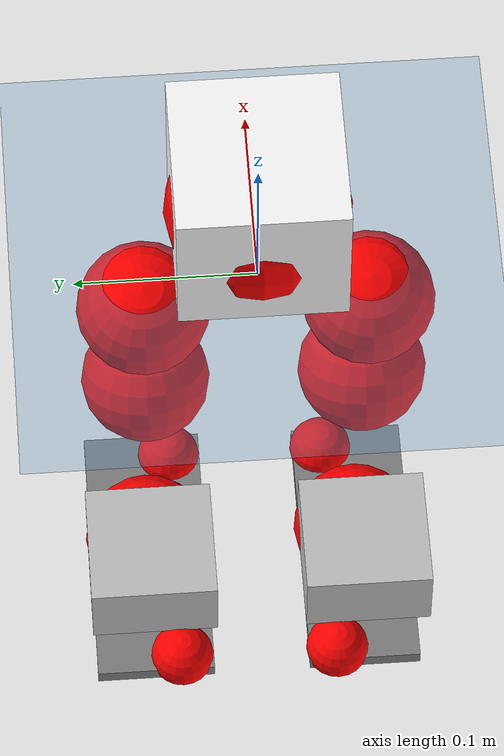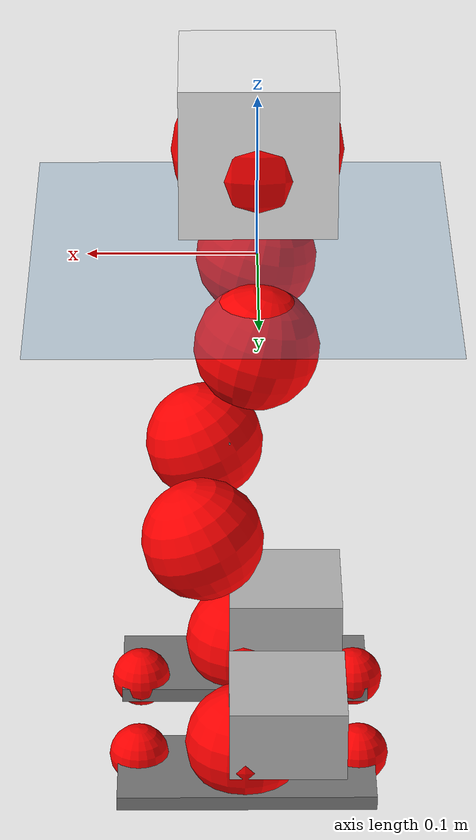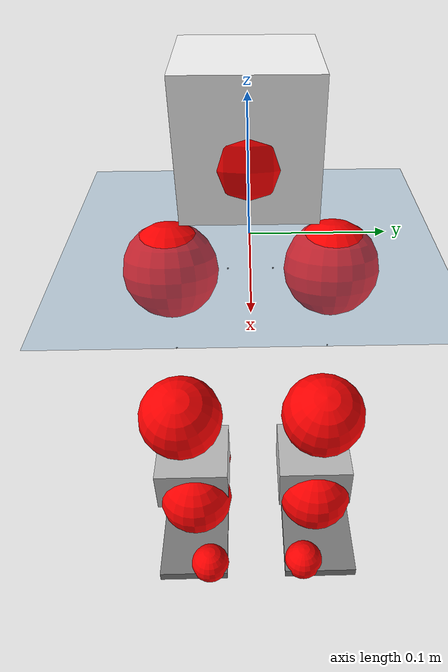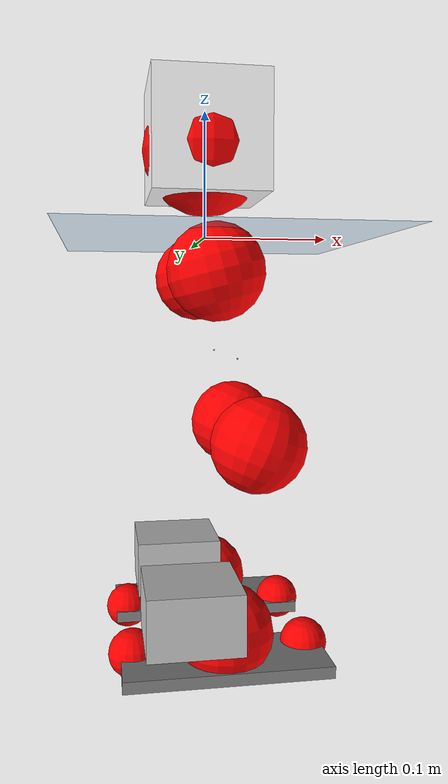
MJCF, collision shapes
<mujoco model="pi_12dof_release_v1">
  <compiler angle="radian" assetdir="assets" balanceinertia="true" inertiafromgeom="false"/>

  <option timestep="0.005" density="1.2" viscosity="2e-05"/>

  <size nkey="1"/>

  <visual>
    <quality shadowsize="8192"/>
    <map shadowclip="0.5"/>
  </visual>

  <default>
    <default class="/">
      <joint armature="0.01" damping="0.01" frictionloss="0.01"/>
      <geom contype="0" conaffinity="0" group="1" solref="-1000 -80"/>
      <site size="0.01 0.005 0.005" group="5"/>
      <general forcelimited="true" biastype="affine" gainprm="20" biasprm="0 -20 -0.5"/>
      <default class="foot">
        <geom size="0.0845 0.036 0.005" type="box" condim="6" group="4" priority="1" friction="0.9 0.2 0.2" solimp="0.015 1 0.005"/>
      </default>
      <default class="reward_collision_sphere">
        <geom group="5" rgba="1 0 0 1"/>
      </default>
    </default>
  </default>

  <asset>
    <texture type="skybox" colorspace="auto" name="//unnamed_texture_0" builtin="gradient" rgb1="0.95 0.95 0.95" rgb2="0.95 0.95 0.95" width="100" height="600"/>
    <texture type="2d" colorspace="auto" name="texplane" builtin="checker" rgb1="0.345 0.575 0.748" rgb2="0.345 0.575 0.748" markrgb="1 1 1" width="512" height="512"/>
    <material name="MatPlane" class="/" texture="texplane" texuniform="true" texrepeat="2 2" specular="0.9"/>
    <mesh name="baselink_1" class="/" file="baselink_1.STL"/>
    <mesh name="r_hip_pitch_link" class="/" file="r_hip_pitch_link.STL"/>
    <mesh name="r_hip_roll_link" class="/" file="r_hip_roll_link.STL"/>
    <mesh name="r_thigh_link" class="/" file="r_thigh_link.STL"/>
    <mesh name="r_calf_link" class="/" file="r_calf_link.STL"/>
    <mesh name="r_ankle_pitch_link" class="/" file="r_ankle_pitch_link.STL"/>
    <mesh name="r_ankle_roll_link" class="/" file="r_ankle_roll_link.STL"/>
    <mesh name="l_hip_pitch_link" class="/" file="l_hip_pitch_link.STL"/>
    <mesh name="l_hip_roll_link" class="/" file="l_hip_roll_link.STL"/>
    <mesh name="l_thigh_link" class="/" file="l_thigh_link.STL"/>
    <mesh name="l_calf_link" class="/" file="l_calf_link.STL"/>
    <mesh name="l_ankle_pitch_link" class="/" file="l_ankle_pitch_link.STL"/>
    <mesh name="l_ankle_roll_link" class="/" file="l_ankle_roll_link.STL"/>
  </asset>

  <worldbody>
    <geom name="floor" class="/" size="100 100 0.125" type="plane" group="0" material="MatPlane"/>
    <light name="toplight_shadow" class="/" pos="0 0 5" dir="0.0990148 0.0990148 -0.990148" type="directional" ambient="0.04 0.04 0.04" diffuse="0.55 0.55 0.55" specular="0.12 0.12 0.12"/>
    <light name="toplight_fill" class="/" pos="0 0 5" dir="0.0990148 0.0990148 -0.990148" type="directional" castshadow="false" ambient="0.04 0.04 0.04" diffuse="0.3 0.3 0.3" specular="0.08 0.08 0.08"/>
    <body name="trunk" pos="2.17297e-05 1.31052e-05 0.000864011" quat="1 8.08001e-06 1.35912e-05 6.3147e-05">
      <inertial pos="0.00194814 -0.000972005 0.037632" quat="0.695339 0.00967673 0.00934092 0.718556" mass="1.6735" diaginertia="0.0099378 0.0028387 0.00323313"/>
      <joint name="//unnamed_joint_0" type="free"/>
      <geom name="//unnamed_geom_1" class="/" type="mesh" density="0" rgba="1 1 1 1" mesh="baselink_1"/>
      <geom name="//unnamed_geom_2" class="/" size="0.0457793 0.0457793 0.0457793" pos="0 0 0.0759924" type="box" rgba="1 1 1 1"/>
      <geom name="//unnamed_geom_3" class="reward_collision_sphere" size="0.0503573" pos="0 0 0.0664934"/>
      <site name="imu" class="/" pos="0.0013218 0.0031326 0.000667563" size="0.00915587"/>
      <camera name="track" class="/" pos="0 -1.58707 0" quat="0.707107 0.707107 0 0" mode="trackcom"/>
      <camera name="ego_camera" class="/" pos="0.0752489 0 0.170983" quat="-0.5 -0.5 0.5 0.5"/>
      <body name="r_hip_pitch_link" pos="-0.000167203 -0.0169705 -0.0308549" quat="0.992225 2.51387e-05 -0.124457 0.000135436">
        <inertial pos="0.00165406 -0.0444532 0.000432232" quat="-0.019024 0.705988 -0.0283237 0.707402" mass="0.280727" diaginertia="0.000109676 3.08998e-05 6.3339e-05"/>
        <joint name="r_hip_pitch_joint" class="/" pos="0 0 0" axis="0.00359227 -0.999985 -0.00410051" range="-1.74473 1.26749" armature="0.00947141" damping="0.0159154" frictionloss="0.00953356"/>
        <geom name="//unnamed_geom_4" class="/" type="mesh" density="0" rgba="0.75294 0.75294 0.75294 1" mesh="r_hip_pitch_link"/>
        <geom name="//unnamed_geom_5" class="/" size="0.000457793 0.000457793 0.000457793" type="box" rgba="0.75294 0.75294 0.75294 1"/>
        <body name="r_hip_roll_link" pos="-0.000183334 -0.0437838 -0.000498178" quat="1 3.80946e-05 1.39674e-05 3.20655e-05">
          <inertial pos="-0.0013043 0.000158857 -0.0576135" quat="0.705925 -0.0791168 -0.0825578 0.698995" mass="0.301428" diaginertia="0.000340983 8.70893e-05 9.95137e-05"/>
          <joint name="r_hip_roll_joint" class="/" pos="0 0 0" axis="-0.999993 0.00323083 -0.00188527" stiffness="0.00111417" range="-0.121838 0.502924" armature="0.00909828" damping="0.00249472" frictionloss="0.00884318"/>
          <geom name="//unnamed_geom_6" class="/" type="mesh" density="0" rgba="0.75294 0.75294 0.75294 1" mesh="r_hip_roll_link"/>
          <geom name="//unnamed_geom_7" class="/" size="0.000457793 0.000457793 0.000457793" type="box" rgba="0.75294 0.75294 0.75294 1"/>
          <geom name="//unnamed_geom_8" class="reward_collision_sphere" size="0.0366235"/>
          <body name="r_thigh_link" pos="-0.000414665 -6.02463e-05 -0.0660346" quat="1 6.21535e-05 0.000105277 4.07323e-05">
            <inertial pos="0.000360682 0.000787921 -0.0453899" quat="0.737286 0.675581 0.000179939 -0.000116037" mass="0.0872147" diaginertia="0.00012708 2.99784e-05 4.51202e-05"/>
            <joint name="r_thigh_joint" class="/" pos="0 0 0" axis="-0.000516181 -8.84411e-05 -1" range="-0.301103 0.610117" armature="0.00885414" damping="0.00246104" frictionloss="0.00922448"/>
            <geom name="//unnamed_geom_9" class="/" type="mesh" density="0" rgba="0.75294 0.75294 0.75294 1" mesh="r_thigh_link"/>
            <geom name="//unnamed_geom_10" class="/" size="0.000457793 0.000457793 0.000457793" type="box" rgba="0.75294 0.75294 0.75294 1"/>
            <body name="r_calf_link" pos="-0.000606939 -0.00136872 -0.0666356" quat="0.947581 0.000198901 0.319515 -6.68569e-05">
              <inertial pos="-0.000253475 -0.000205499 -0.066746" quat="0.999982 -0.00364946 0.000502168 0.00479455" mass="0.630536" diaginertia="0.00360736 0.00111191 0.000135055"/>
              <joint name="r_calf_joint" class="/" pos="0 0 0" axis="0.00056723 -0.999999 0.00161672" range="-1.64823 0.649575" armature="0.00919041" damping="0.00743035" frictionloss="0.00894745"/>
              <geom name="//unnamed_geom_11" class="/" type="mesh" density="0" rgba="0.75294 0.75294 0.75294 1" mesh="r_calf_link"/>
              <geom name="//unnamed_geom_12" class="/" size="0.000457793 0.000457793 0.000457793" type="box" rgba="0.75294 0.75294 0.75294 1"/>
              <geom name="//unnamed_geom_13" class="reward_collision_sphere" size="0.0366235"/>
              <body name="r_ankle_pitch_link" pos="0.000913376 -0.000254385 -0.133528" quat="0.980081 -1.4382e-06 -0.198597 -8.30872e-05">
                <inertial pos="0.00474364 0.00274785 -0.000237061" quat="0.00257289 0.706794 -0.00174945 0.707412" mass="0.136424" diaginertia="0.000315071 7.02577e-05 9.34787e-05"/>
                <joint name="r_ankle_pitch_joint" class="/" pos="0 0 0" axis="0.000828741 -0.999998 0.00164303" stiffness="0.000923091" range="-1.28179 0.496034" armature="0.00920115" damping="0.00720847" frictionloss="0.00888979"/>
                <geom name="//unnamed_geom_14" class="/" type="mesh" density="0" rgba="0.75294 0.75294 0.75294 1" mesh="r_ankle_pitch_link"/>
                <geom name="//unnamed_geom_15" class="/" size="0.0357079 0.0366235 0.0228897" type="box" rgba="0.75294 0.75294 0.75294 1"/>
                <body name="r_ankle_roll_link" pos="0.077001 0.00289008 -0.000818896" quat="1 2.54433e-05 -6.38708e-06 2.11341e-05">
                  <inertial pos="-0.0239981 -0.000296092 -0.0136961" quat="0.560575 0.431618 0.432262 0.559117" mass="0.394525" diaginertia="0.00113811 0.000323243 0.000218198"/>
                  <joint name="r_ankle_roll_joint" class="/" pos="0 0 0" axis="-0.999999 0.000232721 0.00144124" range="-0.155624 0.149209" armature="0.00916135" damping="0.00595902" frictionloss="0.00931823"/>
                  <geom name="//unnamed_geom_16" class="/" type="mesh" density="0" rgba="0.75294 0.75294 0.75294 1" mesh="r_ankle_roll_link"/>
                  <geom name="//unnamed_geom_17" class="/" type="mesh" rgba="0.75294 0.75294 0.75294 1" mesh="r_ankle_roll_link"/>
                  <geom name="right_foot" class="foot" size="0.0781484 0.0324992 0.00453737" pos="-0.0511693 0 -0.0417958"/>
                  <geom name="//unnamed_geom_19" class="reward_collision_sphere" size="0.0366235" pos="-0.0501659 0 -0.0189981"/>
                  <geom name="//unnamed_geom_20" class="reward_collision_sphere" size="0.0183117" pos="0.0150498 0.0158707 -0.0379962"/>
                  <geom name="//unnamed_geom_21" class="reward_collision_sphere" size="0.0183117" pos="-0.120398 0.0158707 -0.0379962"/>
                  <site name="right_foot" class="foot" pos="-0.0511693 0 -0.0417958" size="0.00915587"/>
                </body>
              </body>
            </body>
          </body>
        </body>
      </body>
      <body name="l_hip_pitch_link" pos="7.23938e-05 0.01768 -0.0308218" quat="0.99221 -3.12953e-05 -0.124573 8.17732e-05">
        <inertial pos="0.00122031 0.0431735 0.000355272" quat="-0.0372261 0.703915 0.0315459 0.708606" mass="0.296833" diaginertia="0.000130899 3.27075e-05 7.80581e-05"/>
        <joint name="l_hip_pitch_joint" class="/" pos="0 0 0" axis="-8.40144e-06 1 -1.96061e-05" range="-1.26134 1.75824" armature="0.00882838" damping="0.00969097" frictionloss="0.00944488"/>
        <geom name="//unnamed_geom_22" class="/" type="mesh" density="0" rgba="0.75294 0.75294 0.75294 1" mesh="l_hip_pitch_link"/>
        <geom name="//unnamed_geom_23" class="/" size="0.000457793 0.000457793 0.000457793" type="box" rgba="0.75294 0.75294 0.75294 1"/>
        <body name="l_hip_roll_link" pos="0.000764909 0.0447852 9.45297e-05" quat="1 -1.87268e-05 -0.000116678 -4.68591e-05">
          <inertial pos="-0.00155657 0.000748288 -0.0581873" quat="0.699136 -0.075538 -0.0779464 0.706701" mass="0.300305" diaginertia="0.000337216 8.78924e-05 9.87067e-05"/>
          <joint name="l_hip_roll_joint" class="/" pos="0 0 0" axis="-0.999999 0.000991318 0.000531769" range="-0.491212 0.117196" armature="0.0093343" damping="0.00477895" frictionloss="0.00902564"/>
          <geom name="//unnamed_geom_24" class="/" type="mesh" density="0" rgba="0.75294 0.75294 0.75294 1" mesh="l_hip_roll_link"/>
          <geom name="//unnamed_geom_25" class="/" size="0.000457793 0.000457793 0.000457793" type="box" rgba="0.75294 0.75294 0.75294 1"/>
          <geom name="//unnamed_geom_26" class="reward_collision_sphere" size="0.0366235"/>
          <body name="l_thigh_link" pos="-0.000675425 -0.000418179 -0.065718" quat="1 1.02496e-05 5.6094e-06 0.000294878">
            <inertial pos="-0.000230535 -0.0017792 -0.0445585" quat="0.675397 0.737455 3.85145e-05 2.79364e-05" mass="0.0876986" diaginertia="0.00012752 2.99403e-05 4.55461e-05"/>
            <joint name="l_thigh_joint" class="/" pos="0 0 0" axis="-0.000142418 0.001828 -0.999998" range="-0.591568 0.307894" armature="0.00911881" damping="0" frictionloss="0.00955102"/>
            <geom name="//unnamed_geom_27" class="/" type="mesh" density="0" rgba="0.75294 0.75294 0.75294 1" mesh="l_thigh_link"/>
            <geom name="//unnamed_geom_28" class="/" size="0.000457793 0.000457793 0.000457793" type="box" rgba="0.75294 0.75294 0.75294 1"/>
            <body name="l_calf_link" pos="-0.00048965 -0.00051133 -0.0668957" quat="0.947624 -0.000229075 0.319389 4.98146e-05">
              <inertial pos="0.000349304 0.00200216 -0.0661149" quat="0.999982 0.00134108 -0.000846938 0.00581091" mass="0.627412" diaginertia="0.0035815 0.00111874 0.000136526"/>
              <joint name="l_calf_joint" class="/" pos="0 0 0" axis="-0.000448269 1 -0.000635619" range="-0.640954 1.66029" armature="0.00910892" damping="0.00924995" frictionloss="0.00953559"/>
              <geom name="//unnamed_geom_29" class="/" type="mesh" density="0" rgba="0.75294 0.75294 0.75294 1" mesh="l_calf_link"/>
              <geom name="//unnamed_geom_30" class="/" size="0.000457793 0.000457793 0.000457793" type="box" rgba="0.75294 0.75294 0.75294 1"/>
              <geom name="//unnamed_geom_31" class="reward_collision_sphere" size="0.0366235"/>
              <body name="l_ankle_pitch_link" pos="0.000565606 0.00154629 -0.13368" quat="0.980068 -1.5092e-05 -0.198663 2.37926e-05">
                <inertial pos="0.00484327 -0.000186074 -0.000661595" quat="-0.0025586 0.709787 0.00205532 0.704408" mass="0.134069" diaginertia="0.000311397 6.91513e-05 9.23823e-05"/>
                <joint name="l_ankle_pitch_joint" class="/" pos="0 0 0" axis="-0.000131865 1 -0.000205207" range="-0.508774 1.30549" armature="0.00924621" damping="0.00464457" frictionloss="0.00894748"/>
                <geom name="//unnamed_geom_32" class="/" type="mesh" density="0" rgba="0.75294 0.75294 0.75294 1" mesh="l_ankle_pitch_link"/>
                <geom name="//unnamed_geom_33" class="/" size="0.0357079 0.0366235 0.0228897" type="box" rgba="0.75294 0.75294 0.75294 1"/>
                <body name="l_ankle_roll_link" pos="0.076142 0.000916795 0.000318616" quat="1 -0.000209335 0.000307757 8.1007e-06">
                  <inertial pos="-0.0242762 -0.000270123 -0.0138161" quat="0.560091 0.430823 0.433724 0.559082" mass="0.401865" diaginertia="0.00116146 0.000324721 0.000221883"/>
                  <joint name="l_ankle_roll_joint" class="/" pos="0 0 0" axis="-0.999995 -0.00256313 0.00198482" stiffness="0.0011072" range="-0.151567 0.140024" armature="0.0092416" damping="0.0072827" frictionloss="0.00894195"/>
                  <geom name="//unnamed_geom_34" class="/" type="mesh" density="0" rgba="0.75294 0.75294 0.75294 1" mesh="l_ankle_roll_link"/>
                  <geom name="//unnamed_geom_35" class="/" type="mesh" rgba="0.75294 0.75294 0.75294 1" mesh="l_ankle_roll_link"/>
                  <geom name="left_foot" class="foot" size="0.0792035 0.0342806 0.00451756" pos="-0.0511693 0 -0.0417958"/>
                  <geom name="//unnamed_geom_37" class="reward_collision_sphere" size="0.0366235" pos="-0.0501659 0 -0.0189981"/>
                  <geom name="//unnamed_geom_38" class="reward_collision_sphere" size="0.0183117" pos="0.0150498 -0.0158707 -0.0379962"/>
                  <geom name="//unnamed_geom_39" class="reward_collision_sphere" size="0.0183117" pos="-0.120398 -0.0158707 -0.0379962"/>
                  <site name="left_foot" class="foot" pos="-0.0511693 0 -0.0417958" size="0.00915587"/>
                </body>
              </body>
            </body>
          </body>
        </body>
      </body>
    </body>
  </worldbody>

  <contact>
    <pair class="/" geom1="floor" geom2="right_foot" name="//unnamed_contact_1"/>
    <pair class="/" geom1="floor" geom2="left_foot" name="//unnamed_contact_0"/>
  </contact>

  <actuator>
    <general name="r_hip_pitch_joint" class="/" joint="r_hip_pitch_joint" forcerange="-19.8703 19.8703" gainprm="18.3678" biasprm="0 -18.3678 -0.461125"/>
    <general name="r_hip_roll_joint" class="/" joint="r_hip_roll_joint" forcerange="-19.2507 19.2507" gainprm="18.3678" biasprm="0 -18.3678 -0.461125"/>
    <general name="r_thigh_joint" class="/" joint="r_thigh_joint" forcerange="-19.8143 19.8143" gainprm="18.3678" biasprm="0 -18.3678 -0.461125"/>
    <general name="r_calf_joint" class="/" joint="r_calf_joint" forcerange="-19.4348 19.4348" gainprm="18.3678" biasprm="0 -18.3678 -0.461125"/>
    <general name="r_ankle_pitch_joint" class="/" joint="r_ankle_pitch_joint" forcerange="-18.6037 18.6037" gainprm="18.3678" biasprm="0 -18.3678 -0.461125"/>
    <general name="r_ankle_roll_joint" class="/" joint="r_ankle_roll_joint" forcerange="-18.984 18.984" gainprm="18.3678" biasprm="0 -18.3678 -0.461125"/>
    <general name="l_hip_pitch_joint" class="/" joint="l_hip_pitch_joint" forcerange="-19.6904 19.6904" gainprm="18.3678" biasprm="0 -18.3678 -0.461125"/>
    <general name="l_hip_roll_joint" class="/" joint="l_hip_roll_joint" forcerange="-18.9427 18.9427" gainprm="18.3678" biasprm="0 -18.3678 -0.461125"/>
    <general name="l_thigh_joint" class="/" joint="l_thigh_joint" forcerange="-19.563 19.563" gainprm="18.3678" biasprm="0 -18.3678 -0.461125"/>
    <general name="l_calf_joint" class="/" joint="l_calf_joint" forcerange="-18.9084 18.9084" gainprm="18.3678" biasprm="0 -18.3678 -0.461125"/>
    <general name="l_ankle_pitch_joint" class="/" joint="l_ankle_pitch_joint" forcerange="-19.4318 19.4318" gainprm="18.3678" biasprm="0 -18.3678 -0.461125"/>
    <general name="l_ankle_roll_joint" class="/" joint="l_ankle_roll_joint" forcerange="-19.4546 19.4546" gainprm="18.3678" biasprm="0 -18.3678 -0.461125"/>
  </actuator>

  <sensor>
    <gyro site="imu" name="imu_angular_velocity"/>
    <velocimeter site="imu" name="imu_linear_velocity"/>
    <framelinvel objtype="site" objname="left_foot" name="left_foot_global_linear_velocity"/>
    <framelinvel objtype="site" objname="right_foot" name="right_foot_global_linear_velocity"/>
  </sensor>

  <keyframe>
    <key name="home" qpos="0 0 0.291 1 0 0 0 0.4 0 0 -0.8 0.4 0 -0.4 0 0 0.8 -0.4 0"/>
  </keyframe>
</mujoco>
